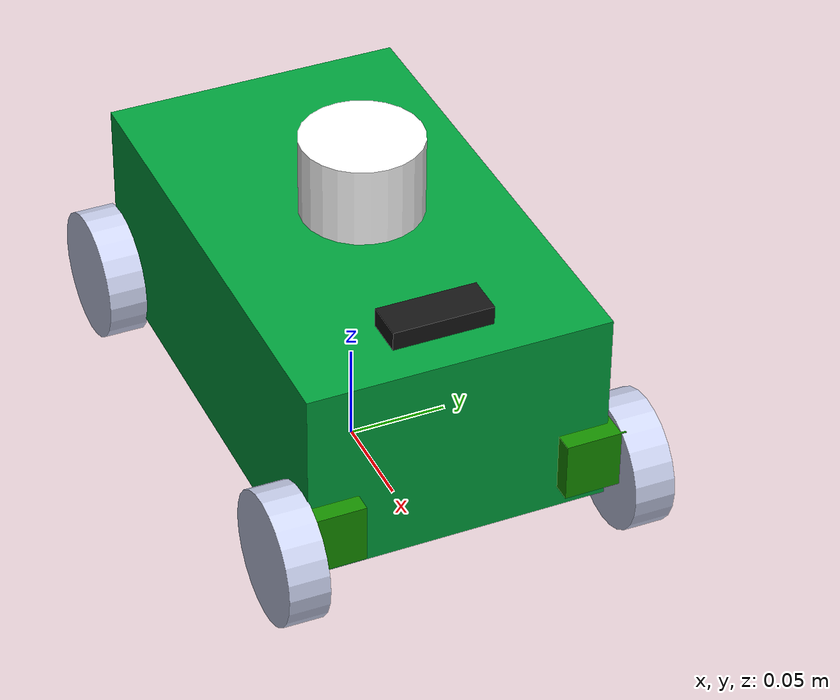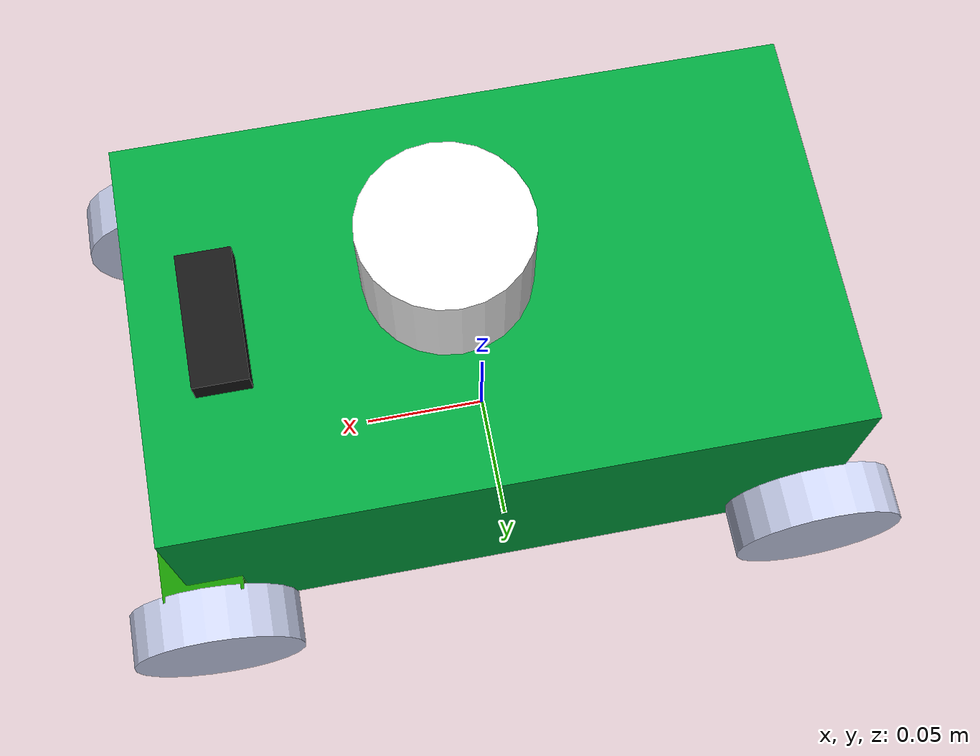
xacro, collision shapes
<?xml version="1.0" encoding="utf-8"?>
<robot name="bumperbot" xmlns:xacro="http://ros.org/wiki/xacro">
  <xacro:arg name="is_ignition" default="true"/>

  <xacro:include filename="$(find bumperbot_description)/urdf/bumperbot_gazebo.xacro" />
  <xacro:include filename="$(find bumperbot_description)/urdf/bumperbot_ros2_control.xacro" />
  <link name="base_footprint"/>

<joint name="base_joint" type="fixed">
  <parent link="base_footprint"/>
  <child link="base_link"/>
  <origin xyz="0 0 0.033" rpy="0 0 0"/>
</joint>

  <link name="base_link">
    <inertial>
      <origin xyz="-0.014025 -0.00011707 0.082168" rpy="0 0 0" />
      <mass value="0.52447" />
      <inertia ixx="0.00066245" ixy="-3.1852E-08" ixz="-4.6503E-05" iyy="0.0012486" iyz="-3.356E-08" izz="0.0018052" />
    </inertial>
    <visual>
      <origin xyz="0 0 0" rpy="0 0 0" />
      <geometry>
        <mesh filename="package://bumperbot_description/meshes/base_link.STL" />
      </geometry>
      <material name="">
        <color rgba="0 0.62745 0.23529 1" />
      </material>
    </visual>
    <collision>
      <origin xyz="0 0 0.05" rpy="0 0 0" />
      <geometry>
        <box size="0.25 0.15 0.1" />
      </geometry>
    </collision>
  </link>

  <link name="back_right_link">
    <inertial>
      <origin xyz="3.8959E-08 0.0015615 -6.3774E-08" rpy="0 0 0" />
      <mass value="0.060236" />
      <inertia ixx="2.5326E-05" ixy="-2.701E-10" ixz="3.3546E-09" iyy="4.4342E-05" iyz="-2.9324E-10" izz="2.531E-05" />
    </inertial>
    <visual>
      <origin xyz="0 0 0" rpy="0 0 0" />
      <geometry>
        <mesh filename="package://bumperbot_description/meshes/back_right_link.STL" />
      </geometry>
      <material name="">
        <color rgba="0.79216 0.81961 0.93333 1" />
      </material>
    </visual>
    <collision>
      <origin xyz="0 0 0" rpy="1.5708 0 0" />
      <geometry>
        <cylinder radius="0.0325" length="0.02" />
      </geometry>
    </collision>
  </link>

  <joint name="back_right_joint" type="continuous">
    <origin xyz="-0.11607 -0.08425 0.0125" rpy="0 0 0" />
    <parent link="base_link" />
    <child link="back_right_link" />
    <axis xyz="0 1 0" />
  </joint>

  <link name="back_left_link">
    <inertial>
      <origin xyz="-6.87042718550135E-08 -0.00156153690070754 3.00324059371304E-08" rpy="0 0 0" />
      <mass value="0.0602360431220635" />
      <inertia ixx="2.53100986719244E-05" ixy="-3.65138701967536E-11" ixz="1.15601374112124E-09" iyy="4.43431918315874E-05" iyz="-7.01985398840287E-11" izz="2.53280330627738E-05" />
    </inertial>
    <visual>
      <origin xyz="0 0 0" rpy="0 0 0" />
      <geometry>
        <mesh filename="package://bumperbot_description/meshes/back_right_link.STL" />
      </geometry>
      <material name="">
        <color rgba="0.792156862745098 0.819607843137255 0.933333333333333 1" />
      </material>
    </visual>
    <collision>
      <origin xyz="0 0 0" rpy="1.5708 0 0" />
      <geometry>
        <cylinder radius="0.0325" length="0.02" />
      </geometry>
    </collision>
  </link>

  <joint name="back_left_joint" type="continuous">
    <origin xyz="-0.11607 0.08425 0.0125" rpy="0 0 0" />
    <parent link="base_link" />
    <child link="back_left_link" />
    <axis xyz="0 1 0" />
  </joint>

  <link name="front_left_steer">
    <inertial>
      <origin xyz="-0.0044676 0.0031203 -0.014101" rpy="0 0 0" />
      <mass value="0.1" />
      <inertia ixx="0.0001" ixy="0.0" ixz="0.0" iyy="0.0001" iyz="0.0" izz="0.0001" />
    </inertial>
    <visual>
      <origin xyz="0 0 0" rpy="0 0 0" />
      <geometry>
        <mesh filename="package://bumperbot_description/meshes/front_left_steer.STL" />
      </geometry>
      <material name="">
        <color rgba="0.082353 0.56078 0 1" />
      </material>
    </visual>
    <collision>
      <origin xyz="0 0 0" rpy="0 0 0" />
      <geometry>
        <box size="0.03 0.03 0.03" />
      </geometry>
    </collision>
  </link>

  <joint name="front_left_steer_joint" type="revolute">
    <origin xyz="0.11922 0.065 0.0262" rpy="0 0 0"/>
    <parent link="base_link"/>
    <child link="front_left_steer"/>
    <axis xyz="0 0 1"/>
    <limit lower="-0.5" upper="0.5" effort="10.0" velocity="1.0"/>
    <dynamics damping="0.1" friction="0.1"/>
  </joint>

  <link name="front_left_wheel">
    <inertial>
      <origin xyz="-6.1417E-08 -0.0048115 4.113E-08" rpy="0 0 0" />
      <mass value="0.060236" />
      <inertia ixx="2.531E-05" ixy="2.9987E-10" ixz="3.7781E-09" iyy="4.4342E-05" iyz="2.6181E-10" izz="2.5326E-05" />
    </inertial>
    <visual>
      <origin xyz="0 0 0" rpy="0 0 0" />
      <geometry>
        <mesh filename="package://bumperbot_description/meshes/back_right_link.STL" />
      </geometry>
      <material name="">
        <color rgba="0.79216 0.81961 0.93333 1" />
      </material>
    </visual>
    <collision>
      <origin xyz="0 0 0" rpy="1.5708 0 0" />
      <geometry>
        <cylinder radius="0.0325" length="0.02" />
      </geometry>
    </collision>
  </link>

  <joint name="front_left_wheel_joint" type="continuous">
    <origin xyz="0.00022897 0.0228 -0.0141" rpy="0 0 -0.010042" />
    <parent link="front_left_steer" />
    <child link="front_left_wheel" />
    <axis xyz="0 1 0" />
  </joint>

  <link name="front_right_steer">
    <inertial>
      <origin xyz="-0.0045387 -0.0030159 -0.012099" rpy="0 0 0" />
      <mass value="0.1" />
      <inertia ixx="0.0001" ixy="0.0" ixz="0.0" iyy="0.0001" iyz="0.0" izz="0.0001" />
    </inertial>
    <visual>
      <origin xyz="0 0 0" rpy="0 0 0" />
      <geometry>
        <mesh filename="package://bumperbot_description/meshes/front_left_steer.STL" />
      </geometry>
      <material name="">
        <color rgba="0.082353 0.56078 0 1" />
      </material>
    </visual>
    <collision>
      <origin xyz="0 0 0" rpy="0 0 0" />
      <geometry>
        <box size="0.03 0.03 0.03" />
      </geometry>
    </collision>
  </link>

  <joint name="front_right_steer_joint" type="revolute">
    <origin xyz="0.11922 -0.065 0.0242" rpy="0 0 0"/>
    <parent link="base_link"/>
    <child link="front_right_steer"/>
    <axis xyz="0 0 1"/>
    <limit lower="-0.5" upper="0.5" effort="10.0" velocity="1.0"/>
    <dynamics damping="0.1" friction="0.1"/>
  </joint>

  <link name="front_right_wheel">
    <inertial>
      <origin xyz="5.5753E-08 0.0015615 -5.0453E-08" rpy="0 0 0" />
      <mass value="0.060236" />
      <inertia ixx="2.5325E-05" ixy="5.201E-11" ixz="7.1484E-09" iyy="4.4343E-05" iyz="6.0924E-11" izz="2.5314E-05" />
    </inertial>
    <visual>
      <origin xyz="0 0 0" rpy="0 0 0" />
      <geometry>
        <mesh filename="package://bumperbot_description/meshes/back_right_link.STL" />
      </geometry>
      <material name="">
        <color rgba="0.79216 0.81961 0.93333 1" />
      </material>
    </visual>
    <collision>
      <origin xyz="0 0 0" rpy="1.5708 0 0" />
      <geometry>
        <cylinder radius="0.0325" length="0.02" />
      </geometry>
    </collision>
  </link>

  <joint name="front_right_wheel_joint" type="continuous">
    <origin xyz="-0.00025662 -0.019549 -0.0121" rpy="0 0 -0.013126" />
    <parent link="front_right_steer" />
    <child link="front_right_wheel" />
    <axis xyz="0 1 0" />
  </joint>

  <link name="camera_link">
    <inertial>
      <origin xyz="-0.0022507 -5.8908E-06 -0.021168" rpy="0 0 0" />
      <mass value="0.22414" />
      <inertia ixx="0.00039172" ixy="2.2482E-08" ixz="4.3677E-08" iyy="4.6625E-05" iyz="1.3858E-10" izz="0.0004106" />
    </inertial>
    <visual>
      <origin xyz="0 0 0" rpy="0 0 0" />
      <geometry>
        <mesh filename="package://bumperbot_description/meshes/camera_link.STL" />
      </geometry>
      <material name="">
        <color rgba="0.082353 0.082353 0.082353 1" />
      </material>
    </visual>
    <collision>
      <origin xyz="0 0 0" rpy="0 0 0" />
      <geometry>
        <box size="0.02 0.05 0.02" />
      </geometry>
    </collision>
  </link>

  <joint name="camera_joint" type="fixed">
    <origin xyz="0.095117 0 0.09955" rpy="0 0.0057171 0" />
    <parent link="base_link" />
    <child link="camera_link" />
    <axis xyz="0 0 0" />
  </joint>

  <link name="laser_link">
    <inertial>
      <origin xyz="0 0 0" rpy="0 0 0" />
      <mass value="0" />
      <inertia ixx="0" ixy="0" ixz="0" iyy="0" iyz="0" izz="0" />
    </inertial>
    <visual>
      <origin xyz="0 0 0" rpy="0 0 0" />
      <geometry>
        <mesh filename="package://bumperbot_description/meshes/laser_link.STL" />
      </geometry>
      <material name="">
        <color rgba="1 1 1 1" />
      </material>
    </visual>
    <collision>
      <origin xyz="0 0 0" rpy="0 0 0" />
      <geometry>
        <cylinder radius="0.03" length="0.04" />
      </geometry>
    </collision>
  </link>

  <joint name="laser_joint" type="fixed">
    <origin xyz="0.012548 0 0.1311" rpy="0 0 0" />
    <parent link="base_link" />
    <child link="laser_link" />
    <axis xyz="0 0 0" />
  </joint>
</robot>
